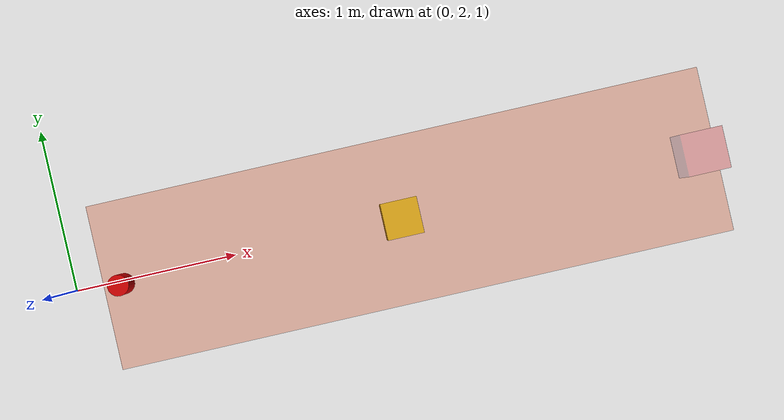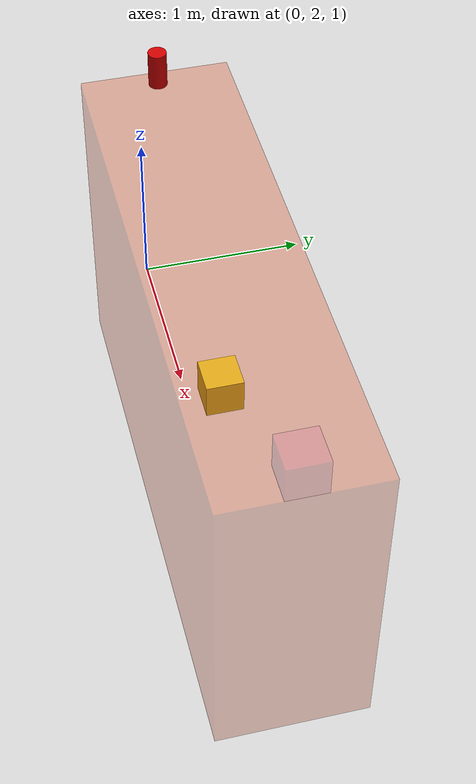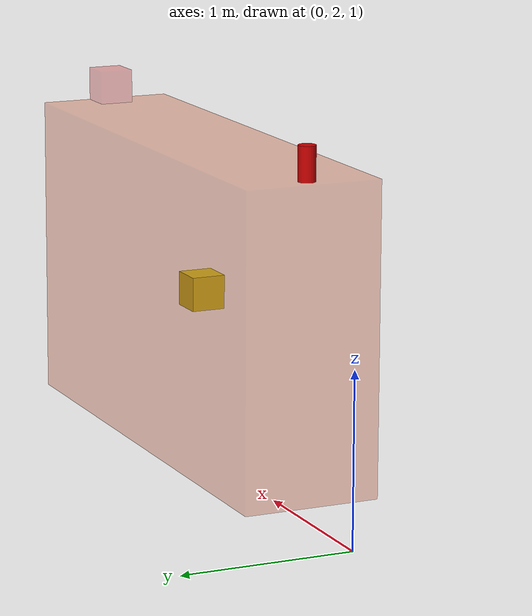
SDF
<?xml version="1.0" ?>
<sdf version="1.6">
	<model name="AUV">
		<pose>2 2 2 0 0 0</pose>

		<link name="body">
			<pose>0 0 0 3.1415926 0 0 </pose>
			<visual name="visual">
				<pose frame=''>0 0 0 0 0 0</pose>
		      <geometry>
              <box>
                <size>3 0.8 1.8</size>
              </box>
          	  </geometry>

              <material>
	      		<ambient>0.8 0.2 0 1</ambient>
          		<diffuse>0.8 0.2 0 1</diffuse>
          		<specular>0.8 0.2 0 1</specular>
          		<emissive>0.8 0.2 0 1</emissive>
        	  </material>
        	  <transparency>0.7</transparency>
			</visual>

			<collision name="collision_box">
			<pose frame=''>0 0 0 0 0 0</pose>
		      <geometry>
              <box>
                <size>3 0.8 1.8</size>
              </box>
          	  </geometry>
			</collision>

			 <gravity>false</gravity>
        <self_collide>true</self_collide>
        <kinematic>false</kinematic>
		</link>

		<link name="dvl_body">
        <pose>1.4 0.0 1 0.0 0.0 0.0</pose>
        <visual name="visual_box">

          <pose>0.0 0.0 0.0 0.0 0.0 0.0</pose>

          <geometry>
            <box>
              <size>0.2 0.2 0.2</size>
            </box>
          </geometry>

          <cast_shadows>true</cast_shadows>
          <laser_retro>100.0</laser_retro>

          <material>
	        <ambient>.8 0 0 1</ambient>
            <diffuse>.8 0 0 1</diffuse>
            <specular>.8 0 0 1</specular>
            <emissive>.8 0 0 1</emissive>
          </material>

          <transparency>0.7</transparency>

        </visual>

        <sensor type="ray" name="sonar">
          <pose>0.0 0 0 0 -1.570796327 0</pose>
          <ray>
            <scan>
              <horizontal>
                <samples>1</samples>
                <resolution>1.0</resolution>
                <min_angle>0</min_angle>
                <max_angle>0</max_angle>
              </horizontal>
              <vertical>
                <samples>1</samples>
                <resolution>1</resolution>
                <min_angle>0</min_angle>
                <max_angle>0</max_angle>
              </vertical>
            </scan>
            <range>
              <min>1</min>
              <max>200</max>
              <resolution>0.01</resolution>
            </range>
          </ray>

          <plugin filename="libdvl_plugin.so" name="dvl_plugin">
            <sensorStdDev>0.004</sensorStdDev>
            <alwaysOn>true</alwaysOn>
            <topicName>dvl</topicName>
            <surfaceModelName>ice</surfaceModelName>
            <updateRate>1</updateRate>
          </plugin>

          <visualize>true</visualize>
        </sensor>

        <gravity>false</gravity>
        <self_collide>true</self_collide>
        <kinematic>false</kinematic>

      	</link>

        <joint name="auv_dvl" type="fixed">
    	<pose>1.4 0.0 -1 0.0 0.0 0.0</pose>
    	<parent>body</parent>
    	<child>dvl_body</child>
    	<frame name="auv_dvl" />
    	</joint>

    	<link name="beacon">
        <pose>-1.4 0 1 0.0 0.0 0.0</pose>
        <visual name="visual_box">
          <pose>0.0 0.0 0.0 0.0 0.0 0.0</pose>
          <geometry>
            <cylinder>
              <radius>0.05</radius>
              <length>0.2</length>
            </cylinder>
          </geometry>
          <cast_shadows>true</cast_shadows>
          <laser_retro>100.0</laser_retro>
          <material>
	        <ambient>.8 0 0 1</ambient>
            <diffuse>.8 0 0 1</diffuse>
            <specular>.8 0 0 1</specular>
            <emissive>.8 0 0 1</emissive>
          </material>
        </visual>

    	<collision name="collision_box">
          <pose>0.0 0.0 0.0 0.0 0.0 0.0</pose>
          <geometry>
            <cylinder>
              <radius>0.05</radius>
              <length>0.15</length>
            </cylinder>
          </geometry>
        </collision>
        <gravity>false</gravity>
        <self_collide>true</self_collide>
        <kinematic>false</kinematic>
      </link>

    <joint name="body_beacon" type="fixed">
    	<pose>0 0 0 0.0 0.0 0.0</pose>
    	<parent>body</parent>
    	<child>beacon</child>
    	<frame name="auv_imu" />
    </joint>

      <link name="imu_body">
      	<pose>0 0 0 0 0 0</pose>
      <inertial>
        <pose>0 0 0 0 0 0</pose>
        <mass>10</mass>
        <inertia>
          <ixx>1.67</ixx>
          <ixy>0</ixy>
          <ixz>0</ixz>
          <iyy>1.67</iyy>
          <iyz>0</iyz>
          <izz>1.67</izz>
        </inertia>
      </inertial>
      <visual name="visual">
        <pose>0 0 0 0 0 0</pose>
        <geometry>
          <box>
            <size>0.2 0.2 0.2</size>
          </box>
        </geometry>
	<material>
          <script>
            <name>Gazebo/Yellow</name>
            <uri>__default__</uri>
          </script>
        </material>
      </visual>

        <gravity>false</gravity>
        <self_collide>true</self_collide>
        <kinematic>false</kinematic>

    </link>

    <joint name="body_imu" type="fixed">
    	<pose>0 0 0 0.0 0.0 0.0</pose>
    	<parent>body</parent>
    	<child>imu_body</child>
    	<frame name="auv_imu" />
    </joint>

    	<plugin name="imu_plugin" filename="libhector_gazebo_ros_imu.so">
		<robotNamespace>/</robotNamespace>
		<updateRate>10.0</updateRate>
		<bodyName>imu_body</bodyName>
		<topicName>imu</topicName>
		<accelDrift>0.00 0.00 0.00</accelDrift>
		<accelGaussianNoise>0.00 0.00 0.00</accelGaussianNoise>
		<rateDrift>0.00 0.00 0.00</rateDrift>
		<rateGaussianNoise>0.00 0.00 0.00 </rateGaussianNoise>
		<headingDrift>0.00</headingDrift>
		<headingGaussianNoise>0.00</headingGaussianNoise>
		</plugin>
	</model>
</sdf>
